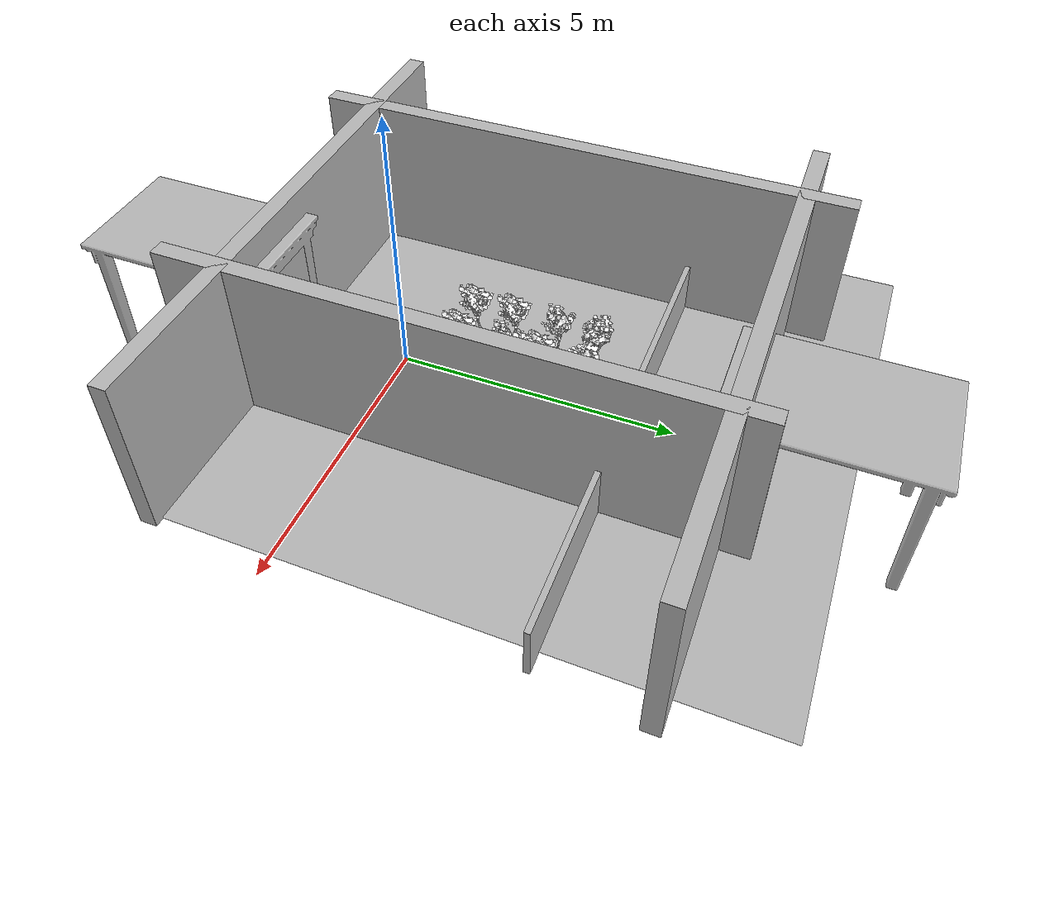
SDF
<?xml version="1.0" ?>
  <sdf version="1.7">
  <world name="default">
  <physics type="ode">
      <ode>
        <solver>
          <type>world</type>
        </solver>
        <constraints>
          <contact_max_correcting_vel>0.1</contact_max_correcting_vel>
          <contact_surface_layer>0.0001</contact_surface_layer>
        </constraints>
      </ode>
      <max_step_size>0.001</max_step_size>
      <real_time_factor>1.0</real_time_factor>
      <real_time_update_rate>1000</real_time_update_rate>
    </physics>
    <gravity>0.0 0.0 -9.81</gravity>
  <!-- A global light source -->
    <light name='sun2' type='point'>
      <cast_shadows>1</cast_shadows>
      <pose frame=''>-0.5 2 5 0 -0 0</pose>
      <diffuse>1 1 1 1</diffuse>
      <specular>0.1 0.1 0.1 1</specular>
      <attenuation>
        <range>100000</range>
        <constant>0.9</constant>
        <linear>0.01</linear>
        <quadratic>0.001</quadratic>
      </attenuation>
      <direction>0 0 1</direction>
    </light>
    <gui fullscreen='0'>
      <camera name='user_camera'>
        <pose>-0.059361 2.171367 15.466796 -0.000711 1.569796 1.571162</pose>
        <view_controller>orbit</view_controller>
        <projection_type>perspective</projection_type>
      </camera>
    </gui>

  <model name='tree_0'>
  <static>true</static>
  <link name='link'>
    <visual name='trunk'>
      <geometry>
        <mesh>
          <uri>model://meshes/Tree_4_Trunk.dae</uri>
          <scale>0.6 0.6 0.6 </scale>
        </mesh>
      </geometry>
      <material>
        <script>
          <uri>model://materials/scripts/</uri>
          <uri>model://materials/textures/</uri>
          <name>Vine/Bark</name>
        </script>
      </material>
    </visual>
    <visual name='leafa'>
      <geometry>
        <mesh>
          <uri>model://meshes/Tree_4_Leaf_1.dae</uri>
          <scale>0.6 0.6 0.6 </scale>
        </mesh>
      </geometry>
      <material>
        <script>
          <uri>model://materials/scripts/</uri>
          <uri>model://materials/textures/</uri>
          <name>Vine/Leafa</name>
        </script>
      </material>
    </visual>
    <visual name='leafb'>
      <geometry>
        <mesh>
          <uri>model://meshes/Tree_4_Leaf_2.dae</uri>
          <scale>0.6 0.6 0.6 </scale>
        </mesh>
      </geometry>
      <material>
        <script>
          <uri>model://materials/scripts/</uri>
          <uri>model://materials/textures/</uri>
          <name>Vine/Leafb</name>
        </script>
      </material>
    </visual>
    <visual name='leafc'>
      <geometry>
        <mesh>
          <uri>model://meshes/Tree_4_Leaf_3.dae</uri>
          <scale>0.6 0.6 0.6 </scale>
        </mesh>
      </geometry>
      <material>
        <script>
          <uri>model://materials/scripts/</uri>
          <uri>model://materials/textures/</uri>
          <name>Vine/Leafc</name>
        </script>
      </material>
    </visual>
    <self_collide>0</self_collide>
    <enable_wind>0</enable_wind>
    <kinematic>0</kinematic>
  </link>
  <pose>-0.41 1.0 0 0 0 0</pose>
</model>

  <model name='tree_1'>
  <static>true</static>
  <link name='link'>
    <visual name='trunk'>
      <geometry>
        <mesh>
          <uri>model://meshes/Tree_2_Trunk.dae</uri>
          <scale>0.6 0.6 0.6 </scale>
        </mesh>
      </geometry>
      <material>
        <script>
          <uri>model://materials/scripts/</uri>
          <uri>model://materials/textures/</uri>
          <name>Vine/Bark</name>
        </script>
      </material>
    </visual>
    <visual name='leafa'>
      <geometry>
        <mesh>
          <uri>model://meshes/Tree_2_Leaf_1.dae</uri>
          <scale>0.6 0.6 0.6 </scale>
        </mesh>
      </geometry>
      <material>
        <script>
          <uri>model://materials/scripts/</uri>
          <uri>model://materials/textures/</uri>
          <name>Vine/Leafa</name>
        </script>
      </material>
    </visual>
    <visual name='leafb'>
      <geometry>
        <mesh>
          <uri>model://meshes/Tree_2_Leaf_2.dae</uri>
          <scale>0.6 0.6 0.6 </scale>
        </mesh>
      </geometry>
      <material>
        <script>
          <uri>model://materials/scripts/</uri>
          <uri>model://materials/textures/</uri>
          <name>Vine/Leafb</name>
        </script>
      </material>
    </visual>
    <visual name='leafc'>
      <geometry>
        <mesh>
          <uri>model://meshes/Tree_2_Leaf_3.dae</uri>
          <scale>0.6 0.6 0.6 </scale>
        </mesh>
      </geometry>
      <material>
        <script>
          <uri>model://materials/scripts/</uri>
          <uri>model://materials/textures/</uri>
          <name>Vine/Leafc</name>
        </script>
      </material>
    </visual>
    <self_collide>0</self_collide>
    <enable_wind>0</enable_wind>
    <kinematic>0</kinematic>
  </link>
  <pose>-0.41 1.75 0 0 0 0</pose>
</model>

  <model name='tree_2'>
  <static>true</static>
  <link name='link'>
    <visual name='trunk'>
      <geometry>
        <mesh>
          <uri>model://meshes/Tree_4_Trunk.dae</uri>
          <scale>0.6 0.6 0.6 </scale>
        </mesh>
      </geometry>
      <material>
        <script>
          <uri>model://materials/scripts/</uri>
          <uri>model://materials/textures/</uri>
          <name>Vine/Bark</name>
        </script>
      </material>
    </visual>
    <visual name='leafa'>
      <geometry>
        <mesh>
          <uri>model://meshes/Tree_4_Leaf_1.dae</uri>
          <scale>0.6 0.6 0.6 </scale>
        </mesh>
      </geometry>
      <material>
        <script>
          <uri>model://materials/scripts/</uri>
          <uri>model://materials/textures/</uri>
          <name>Vine/Leafa</name>
        </script>
      </material>
    </visual>
    <visual name='leafb'>
      <geometry>
        <mesh>
          <uri>model://meshes/Tree_4_Leaf_2.dae</uri>
          <scale>0.6 0.6 0.6 </scale>
        </mesh>
      </geometry>
      <material>
        <script>
          <uri>model://materials/scripts/</uri>
          <uri>model://materials/textures/</uri>
          <name>Vine/Leafb</name>
        </script>
      </material>
    </visual>
    <visual name='leafc'>
      <geometry>
        <mesh>
          <uri>model://meshes/Tree_4_Leaf_3.dae</uri>
          <scale>0.6 0.6 0.6 </scale>
        </mesh>
      </geometry>
      <material>
        <script>
          <uri>model://materials/scripts/</uri>
          <uri>model://materials/textures/</uri>
          <name>Vine/Leafc</name>
        </script>
      </material>
    </visual>
    <self_collide>0</self_collide>
    <enable_wind>0</enable_wind>
    <kinematic>0</kinematic>
  </link>
  <pose>-0.41 2.5 0 0 0 0</pose>
</model>

  <model name='tree_3'>
  <static>true</static>
  <link name='link'>
    <visual name='trunk'>
      <geometry>
        <mesh>
          <uri>model://meshes/Tree_3_Trunk.dae</uri>
          <scale>0.6 0.6 0.6 </scale>
        </mesh>
      </geometry>
      <material>
        <script>
          <uri>model://materials/scripts/</uri>
          <uri>model://materials/textures/</uri>
          <name>Vine/Bark</name>
        </script>
      </material>
    </visual>
    <visual name='leafa'>
      <geometry>
        <mesh>
          <uri>model://meshes/Tree_3_Leaf_1.dae</uri>
          <scale>0.6 0.6 0.6 </scale>
        </mesh>
      </geometry>
      <material>
        <script>
          <uri>model://materials/scripts/</uri>
          <uri>model://materials/textures/</uri>
          <name>Vine/Leafa</name>
        </script>
      </material>
    </visual>
    <visual name='leafb'>
      <geometry>
        <mesh>
          <uri>model://meshes/Tree_3_Leaf_2.dae</uri>
          <scale>0.6 0.6 0.6 </scale>
        </mesh>
      </geometry>
      <material>
        <script>
          <uri>model://materials/scripts/</uri>
          <uri>model://materials/textures/</uri>
          <name>Vine/Leafb</name>
        </script>
      </material>
    </visual>
    <visual name='leafc'>
      <geometry>
        <mesh>
          <uri>model://meshes/Tree_3_Leaf_3.dae</uri>
          <scale>0.6 0.6 0.6 </scale>
        </mesh>
      </geometry>
      <material>
        <script>
          <uri>model://materials/scripts/</uri>
          <uri>model://materials/textures/</uri>
          <name>Vine/Leafc</name>
        </script>
      </material>
    </visual>
    <self_collide>0</self_collide>
    <enable_wind>0</enable_wind>
    <kinematic>0</kinematic>
  </link>
  <pose>-0.41 3.25 0 0 0 0</pose>
</model>

  <model name='tree_4'>
  <static>true</static>
  <link name='link'>
    <visual name='trunk'>
      <geometry>
        <mesh>
          <uri>model://meshes/Tree_1_Trunk.dae</uri>
          <scale>0.6 0.6 0.6 </scale>
        </mesh>
      </geometry>
      <material>
        <script>
          <uri>model://materials/scripts/</uri>
          <uri>model://materials/textures/</uri>
          <name>Vine/Bark</name>
        </script>
      </material>
    </visual>
    <visual name='leafa'>
      <geometry>
        <mesh>
          <uri>model://meshes/Tree_1_Leaf_1.dae</uri>
          <scale>0.6 0.6 0.6 </scale>
        </mesh>
      </geometry>
      <material>
        <script>
          <uri>model://materials/scripts/</uri>
          <uri>model://materials/textures/</uri>
          <name>Vine/Leafa</name>
        </script>
      </material>
    </visual>
    <visual name='leafb'>
      <geometry>
        <mesh>
          <uri>model://meshes/Tree_1_Leaf_2.dae</uri>
          <scale>0.6 0.6 0.6 </scale>
        </mesh>
      </geometry>
      <material>
        <script>
          <uri>model://materials/scripts/</uri>
          <uri>model://materials/textures/</uri>
          <name>Vine/Leafb</name>
        </script>
      </material>
    </visual>
    <visual name='leafc'>
      <geometry>
        <mesh>
          <uri>model://meshes/Tree_1_Leaf_3.dae</uri>
          <scale>0.6 0.6 0.6 </scale>
        </mesh>
      </geometry>
      <material>
        <script>
          <uri>model://materials/scripts/</uri>
          <uri>model://materials/textures/</uri>
          <name>Vine/Leafc</name>
        </script>
      </material>
    </visual>
    <self_collide>0</self_collide>
    <enable_wind>0</enable_wind>
    <kinematic>0</kinematic>
  </link>
  <pose>0.41 1.0 0 0 0 0</pose>
</model>

  <model name='tree_5'>
  <static>true</static>
  <link name='link'>
    <visual name='trunk'>
      <geometry>
        <mesh>
          <uri>model://meshes/Tree_2_Trunk.dae</uri>
          <scale>0.6 0.6 0.6 </scale>
        </mesh>
      </geometry>
      <material>
        <script>
          <uri>model://materials/scripts/</uri>
          <uri>model://materials/textures/</uri>
          <name>Vine/Bark</name>
        </script>
      </material>
    </visual>
    <visual name='leafa'>
      <geometry>
        <mesh>
          <uri>model://meshes/Tree_2_Leaf_1.dae</uri>
          <scale>0.6 0.6 0.6 </scale>
        </mesh>
      </geometry>
      <material>
        <script>
          <uri>model://materials/scripts/</uri>
          <uri>model://materials/textures/</uri>
          <name>Vine/Leafa</name>
        </script>
      </material>
    </visual>
    <visual name='leafb'>
      <geometry>
        <mesh>
          <uri>model://meshes/Tree_2_Leaf_2.dae</uri>
          <scale>0.6 0.6 0.6 </scale>
        </mesh>
      </geometry>
      <material>
        <script>
          <uri>model://materials/scripts/</uri>
          <uri>model://materials/textures/</uri>
          <name>Vine/Leafb</name>
        </script>
      </material>
    </visual>
    <visual name='leafc'>
      <geometry>
        <mesh>
          <uri>model://meshes/Tree_2_Leaf_3.dae</uri>
          <scale>0.6 0.6 0.6 </scale>
        </mesh>
      </geometry>
      <material>
        <script>
          <uri>model://materials/scripts/</uri>
          <uri>model://materials/textures/</uri>
          <name>Vine/Leafc</name>
        </script>
      </material>
    </visual>
    <self_collide>0</self_collide>
    <enable_wind>0</enable_wind>
    <kinematic>0</kinematic>
  </link>
  <pose>0.41 1.75 0 0 0 0</pose>
</model>

  <model name='tree_6'>
  <static>true</static>
  <link name='link'>
    <visual name='trunk'>
      <geometry>
        <mesh>
          <uri>model://meshes/Tree_1_Trunk.dae</uri>
          <scale>0.6 0.6 0.6 </scale>
        </mesh>
      </geometry>
      <material>
        <script>
          <uri>model://materials/scripts/</uri>
          <uri>model://materials/textures/</uri>
          <name>Vine/Bark</name>
        </script>
      </material>
    </visual>
    <visual name='leafa'>
      <geometry>
        <mesh>
          <uri>model://meshes/Tree_1_Leaf_1.dae</uri>
          <scale>0.6 0.6 0.6 </scale>
        </mesh>
      </geometry>
      <material>
        <script>
          <uri>model://materials/scripts/</uri>
          <uri>model://materials/textures/</uri>
          <name>Vine/Leafa</name>
        </script>
      </material>
    </visual>
    <visual name='leafb'>
      <geometry>
        <mesh>
          <uri>model://meshes/Tree_1_Leaf_2.dae</uri>
          <scale>0.6 0.6 0.6 </scale>
        </mesh>
      </geometry>
      <material>
        <script>
          <uri>model://materials/scripts/</uri>
          <uri>model://materials/textures/</uri>
          <name>Vine/Leafb</name>
        </script>
      </material>
    </visual>
    <visual name='leafc'>
      <geometry>
        <mesh>
          <uri>model://meshes/Tree_1_Leaf_3.dae</uri>
          <scale>0.6 0.6 0.6 </scale>
        </mesh>
      </geometry>
      <material>
        <script>
          <uri>model://materials/scripts/</uri>
          <uri>model://materials/textures/</uri>
          <name>Vine/Leafc</name>
        </script>
      </material>
    </visual>
    <self_collide>0</self_collide>
    <enable_wind>0</enable_wind>
    <kinematic>0</kinematic>
  </link>
  <pose>0.41 2.5 0 0 0 0</pose>
</model>

  <model name='tree_7'>
  <static>true</static>
  <link name='link'>
    <visual name='trunk'>
      <geometry>
        <mesh>
          <uri>model://meshes/Tree_3_Trunk.dae</uri>
          <scale>0.6 0.6 0.6 </scale>
        </mesh>
      </geometry>
      <material>
        <script>
          <uri>model://materials/scripts/</uri>
          <uri>model://materials/textures/</uri>
          <name>Vine/Bark</name>
        </script>
      </material>
    </visual>
    <visual name='leafa'>
      <geometry>
        <mesh>
          <uri>model://meshes/Tree_3_Leaf_1.dae</uri>
          <scale>0.6 0.6 0.6 </scale>
        </mesh>
      </geometry>
      <material>
        <script>
          <uri>model://materials/scripts/</uri>
          <uri>model://materials/textures/</uri>
          <name>Vine/Leafa</name>
        </script>
      </material>
    </visual>
    <visual name='leafb'>
      <geometry>
        <mesh>
          <uri>model://meshes/Tree_3_Leaf_2.dae</uri>
          <scale>0.6 0.6 0.6 </scale>
        </mesh>
      </geometry>
      <material>
        <script>
          <uri>model://materials/scripts/</uri>
          <uri>model://materials/textures/</uri>
          <name>Vine/Leafb</name>
        </script>
      </material>
    </visual>
    <visual name='leafc'>
      <geometry>
        <mesh>
          <uri>model://meshes/Tree_3_Leaf_3.dae</uri>
          <scale>0.6 0.6 0.6 </scale>
        </mesh>
      </geometry>
      <material>
        <script>
          <uri>model://materials/scripts/</uri>
          <uri>model://materials/textures/</uri>
          <name>Vine/Leafc</name>
        </script>
      </material>
    </visual>
    <self_collide>0</self_collide>
    <enable_wind>0</enable_wind>
    <kinematic>0</kinematic>
  </link>
  <pose>0.41 3.25 0 0 0 0</pose>
</model>

  <model name='tree_8'>
  <static>true</static>
  <link name='link'>
    <visual name='trunk'>
      <geometry>
        <mesh>
          <uri>model://meshes/Tree_4_Trunk.dae</uri>
          <scale>0.6 0.6 0.6 </scale>
        </mesh>
      </geometry>
      <material>
        <script>
          <uri>model://materials/scripts/</uri>
          <uri>model://materials/textures/</uri>
          <name>Vine/Bark</name>
        </script>
      </material>
    </visual>
    <visual name='leafa'>
      <geometry>
        <mesh>
          <uri>model://meshes/Tree_4_Leaf_1.dae</uri>
          <scale>0.6 0.6 0.6 </scale>
        </mesh>
      </geometry>
      <material>
        <script>
          <uri>model://materials/scripts/</uri>
          <uri>model://materials/textures/</uri>
          <name>Vine/Leafa</name>
        </script>
      </material>
    </visual>
    <visual name='leafb'>
      <geometry>
        <mesh>
          <uri>model://meshes/Tree_4_Leaf_2.dae</uri>
          <scale>0.6 0.6 0.6 </scale>
        </mesh>
      </geometry>
      <material>
        <script>
          <uri>model://materials/scripts/</uri>
          <uri>model://materials/textures/</uri>
          <name>Vine/Leafb</name>
        </script>
      </material>
    </visual>
    <visual name='leafc'>
      <geometry>
        <mesh>
          <uri>model://meshes/Tree_4_Leaf_3.dae</uri>
          <scale>0.6 0.6 0.6 </scale>
        </mesh>
      </geometry>
      <material>
        <script>
          <uri>model://materials/scripts/</uri>
          <uri>model://materials/textures/</uri>
          <name>Vine/Leafc</name>
        </script>
      </material>
    </visual>
    <self_collide>0</self_collide>
    <enable_wind>0</enable_wind>
    <kinematic>0</kinematic>
  </link>
  <pose>-1.16 1.0 0 0 0 0</pose>
</model>

  <model name='tree_9'>
  <static>true</static>
  <link name='link'>
    <visual name='trunk'>
      <geometry>
        <mesh>
          <uri>model://meshes/Tree_4_Trunk.dae</uri>
          <scale>0.6 0.6 0.6 </scale>
        </mesh>
      </geometry>
      <material>
        <script>
          <uri>model://materials/scripts/</uri>
          <uri>model://materials/textures/</uri>
          <name>Vine/Bark</name>
        </script>
      </material>
    </visual>
    <visual name='leafa'>
      <geometry>
        <mesh>
          <uri>model://meshes/Tree_4_Leaf_1.dae</uri>
          <scale>0.6 0.6 0.6 </scale>
        </mesh>
      </geometry>
      <material>
        <script>
          <uri>model://materials/scripts/</uri>
          <uri>model://materials/textures/</uri>
          <name>Vine/Leafa</name>
        </script>
      </material>
    </visual>
    <visual name='leafb'>
      <geometry>
        <mesh>
          <uri>model://meshes/Tree_4_Leaf_2.dae</uri>
          <scale>0.6 0.6 0.6 </scale>
        </mesh>
      </geometry>
      <material>
        <script>
          <uri>model://materials/scripts/</uri>
          <uri>model://materials/textures/</uri>
          <name>Vine/Leafb</name>
        </script>
      </material>
    </visual>
    <visual name='leafc'>
      <geometry>
        <mesh>
          <uri>model://meshes/Tree_4_Leaf_3.dae</uri>
          <scale>0.6 0.6 0.6 </scale>
        </mesh>
      </geometry>
      <material>
        <script>
          <uri>model://materials/scripts/</uri>
          <uri>model://materials/textures/</uri>
          <name>Vine/Leafc</name>
        </script>
      </material>
    </visual>
    <self_collide>0</self_collide>
    <enable_wind>0</enable_wind>
    <kinematic>0</kinematic>
  </link>
  <pose>-1.16 1.75 0 0 0 0</pose>
</model>

  <model name='tree_10'>
  <static>true</static>
  <link name='link'>
    <visual name='trunk'>
      <geometry>
        <mesh>
          <uri>model://meshes/Tree_2_Trunk.dae</uri>
          <scale>0.6 0.6 0.6 </scale>
        </mesh>
      </geometry>
      <material>
        <script>
          <uri>model://materials/scripts/</uri>
          <uri>model://materials/textures/</uri>
          <name>Vine/Bark</name>
        </script>
      </material>
    </visual>
    <visual name='leafa'>
      <geometry>
        <mesh>
          <uri>model://meshes/Tree_2_Leaf_1.dae</uri>
          <scale>0.6 0.6 0.6 </scale>
        </mesh>
      </geometry>
      <material>
        <script>
          <uri>model://materials/scripts/</uri>
          <uri>model://materials/textures/</uri>
          <name>Vine/Leafa</name>
        </script>
      </material>
    </visual>
    <visual name='leafb'>
      <geometry>
        <mesh>
          <uri>model://meshes/Tree_2_Leaf_2.dae</uri>
          <scale>0.6 0.6 0.6 </scale>
        </mesh>
      </geometry>
      <material>
        <script>
          <uri>model://materials/scripts/</uri>
          <uri>model://materials/textures/</uri>
          <name>Vine/Leafb</name>
        </script>
      </material>
    </visual>
    <visual name='leafc'>
      <geometry>
        <mesh>
          <uri>model://meshes/Tree_2_Leaf_3.dae</uri>
          <scale>0.6 0.6 0.6 </scale>
        </mesh>
      </geometry>
      <material>
        <script>
          <uri>model://materials/scripts/</uri>
          <uri>model://materials/textures/</uri>
          <name>Vine/Leafc</name>
        </script>
      </material>
    </visual>
    <self_collide>0</self_collide>
    <enable_wind>0</enable_wind>
    <kinematic>0</kinematic>
  </link>
  <pose>-1.16 2.5 0 0 0 0</pose>
</model>

  <model name='tree_11'>
  <static>true</static>
  <link name='link'>
    <visual name='trunk'>
      <geometry>
        <mesh>
          <uri>model://meshes/Tree_1_Trunk.dae</uri>
          <scale>0.6 0.6 0.6 </scale>
        </mesh>
      </geometry>
      <material>
        <script>
          <uri>model://materials/scripts/</uri>
          <uri>model://materials/textures/</uri>
          <name>Vine/Bark</name>
        </script>
      </material>
    </visual>
    <visual name='leafa'>
      <geometry>
        <mesh>
          <uri>model://meshes/Tree_1_Leaf_1.dae</uri>
          <scale>0.6 0.6 0.6 </scale>
        </mesh>
      </geometry>
      <material>
        <script>
          <uri>model://materials/scripts/</uri>
          <uri>model://materials/textures/</uri>
          <name>Vine/Leafa</name>
        </script>
      </material>
    </visual>
    <visual name='leafb'>
      <geometry>
        <mesh>
          <uri>model://meshes/Tree_1_Leaf_2.dae</uri>
          <scale>0.6 0.6 0.6 </scale>
        </mesh>
      </geometry>
      <material>
        <script>
          <uri>model://materials/scripts/</uri>
          <uri>model://materials/textures/</uri>
          <name>Vine/Leafb</name>
        </script>
      </material>
    </visual>
    <visual name='leafc'>
      <geometry>
        <mesh>
          <uri>model://meshes/Tree_1_Leaf_3.dae</uri>
          <scale>0.6 0.6 0.6 </scale>
        </mesh>
      </geometry>
      <material>
        <script>
          <uri>model://materials/scripts/</uri>
          <uri>model://materials/textures/</uri>
          <name>Vine/Leafc</name>
        </script>
      </material>
    </visual>
    <self_collide>0</self_collide>
    <enable_wind>0</enable_wind>
    <kinematic>0</kinematic>
  </link>
  <pose>-1.16 3.25 0 0 0 0</pose>
</model>

  <model name='obj_12'>
  <static>true</static>
  <link name='link'>
  <visual name='obj'>
    <cast_shadows>1</cast_shadows>
    <geometry>
      <mesh>
        <uri>model://meshes/Radiator.dae</uri>
        <scale>1 1 1 </scale>
      </mesh>
    </geometry>
    <material>
      <script>
        <uri>model://materials/scripts/</uri>
        <uri>model://materials/textures/</uri>
        <name>Obj/Radiator</name>
      </script>
    </material>
  </visual>
  <collision name='Radiator_col'>
    <pose>0 0 0 0 0 0</pose>
    <geometry>
      <mesh>
        <uri>model://meshes/Radiator.dae</uri>
        <scale>1 1 1 </scale>
      </mesh>
    </geometry>
  </collision>
  <self_collide>0</self_collide>
  <enable_wind>0</enable_wind>
  <kinematic>0</kinematic>
  </link>
  <pose>-1.16 5.87 0 0 0 0</pose>
  </model>

  <model name='obj_13'>
  <static>true</static>
  <link name='link'>
  <visual name='obj'>
    <cast_shadows>1</cast_shadows>
    <geometry>
      <mesh>
        <uri>model://meshes/Radiator.dae</uri>
        <scale>1 1 1 </scale>
      </mesh>
    </geometry>
    <material>
      <script>
        <uri>model://materials/scripts/</uri>
        <uri>model://materials/textures/</uri>
        <name>Obj/Radiator</name>
      </script>
    </material>
  </visual>
  <collision name='Radiator_col'>
    <pose>0 0 0 0 0 0</pose>
    <geometry>
      <mesh>
        <uri>model://meshes/Radiator.dae</uri>
        <scale>1 1 1 </scale>
      </mesh>
    </geometry>
  </collision>
  <self_collide>0</self_collide>
  <enable_wind>0</enable_wind>
  <kinematic>0</kinematic>
  </link>
  <pose>1.6 3.8 0 0 0 1.57079632679</pose>
  </model>

  <model name='obj_14'>
  <static>true</static>
  <link name='link'>
  <visual name='obj'>
    <cast_shadows>1</cast_shadows>
    <geometry>
      <mesh>
        <uri>model://meshes/Radiator.dae</uri>
        <scale>1 1 1 </scale>
      </mesh>
    </geometry>
    <material>
      <script>
        <uri>model://materials/scripts/</uri>
        <uri>model://materials/textures/</uri>
        <name>Obj/Radiator</name>
      </script>
    </material>
  </visual>
  <collision name='Radiator_col'>
    <pose>0 0 0 0 0 0</pose>
    <geometry>
      <mesh>
        <uri>model://meshes/Radiator.dae</uri>
        <scale>1 1 1 </scale>
      </mesh>
    </geometry>
  </collision>
  <self_collide>0</self_collide>
  <enable_wind>0</enable_wind>
  <kinematic>0</kinematic>
  </link>
  <pose>1.6 -0.3 0 0 0 1.57079632679</pose>
  </model>

  <model name='obj_15'>
  <static>true</static>
  <link name='link'>
  <visual name='obj'>
    <cast_shadows>1</cast_shadows>
    <geometry>
      <mesh>
        <uri>model://meshes/Table.dae</uri>
        <scale>0.2 0.2 0.2 </scale>
      </mesh>
    </geometry>
    <material>
      <script>
        <uri>model://materials/scripts/</uri>
        <uri>model://materials/textures/</uri>
        <name>Obj/Table</name>
      </script>
    </material>
  </visual>
  <collision name='Table_col'>
    <pose>0 0 0 0 0 0</pose>
    <geometry>
      <mesh>
        <uri>model://meshes/Table.dae</uri>
        <scale>0.2 0.2 0.2 </scale>
      </mesh>
    </geometry>
  </collision>
  <self_collide>0</self_collide>
  <enable_wind>0</enable_wind>
  <kinematic>0</kinematic>
  </link>
  <pose>0.2 -1.5 0 0 0 1.57079632679</pose>
  </model>

  <model name='obj_16'>
  <static>true</static>
  <link name='link'>
  <visual name='obj'>
    <cast_shadows>1</cast_shadows>
    <geometry>
      <mesh>
        <uri>model://meshes/Table.dae</uri>
        <scale>0.9 0.9 0.9 </scale>
      </mesh>
    </geometry>
    <material>
      <script>
        <uri>model://materials/scripts/</uri>
        <uri>model://materials/textures/</uri>
        <name>Obj/Table</name>
      </script>
    </material>
  </visual>
  <collision name='Table_col'>
    <pose>0 0 0 0 0 0</pose>
    <geometry>
      <mesh>
        <uri>model://meshes/Table.dae</uri>
        <scale>0.9 0.9 0.9 </scale>
      </mesh>
    </geometry>
  </collision>
  <self_collide>0</self_collide>
  <enable_wind>0</enable_wind>
  <kinematic>0</kinematic>
  </link>
  <pose>0.77 7.42 0 0 0 1.57079632679</pose>
  </model>

  <model name='obj_17'>
  <static>true</static>
  <link name='link'>
  <visual name='obj'>
    <cast_shadows>1</cast_shadows>
    <geometry>
      <mesh>
        <uri>model://meshes/Table.dae</uri>
        <scale>0.9 0.9 0.9 </scale>
      </mesh>
    </geometry>
    <material>
      <script>
        <uri>model://materials/scripts/</uri>
        <uri>model://materials/textures/</uri>
        <name>Obj/Table</name>
      </script>
    </material>
  </visual>
  <collision name='Table_col'>
    <pose>0 0 0 0 0 0</pose>
    <geometry>
      <mesh>
        <uri>model://meshes/Table.dae</uri>
        <scale>0.9 0.9 0.9 </scale>
      </mesh>
    </geometry>
  </collision>
  <self_collide>0</self_collide>
  <enable_wind>0</enable_wind>
  <kinematic>0</kinematic>
  </link>
  <pose>0.68 -3.36 0 0 0 1.57079632679</pose>
  </model>

  <model name='obj_18'>
  <static>true</static>
  <link name='link'>
  <visual name='obj'>
    <cast_shadows>1</cast_shadows>
    <geometry>
      <mesh>
        <uri>model://meshes/Floor.dae</uri>
        <scale>1 1 1 </scale>
      </mesh>
    </geometry>
    <material>
      <script>
        <uri>model://materials/scripts/</uri>
        <uri>model://materials/textures/</uri>
        <name>Obj/Floor</name>
      </script>
    </material>
  </visual>
  <collision name='Floor_col'>
    <pose>0 0 0 0 0 0</pose>
    <geometry>
      <mesh>
        <uri>model://meshes/Floor.dae</uri>
        <scale>1 1 1 </scale>
      </mesh>
    </geometry>
  </collision>
  <self_collide>0</self_collide>
  <enable_wind>0</enable_wind>
  <kinematic>0</kinematic>
  </link>
  <pose>-4 -8 0.03 0 0 0</pose>
  </model>

  <model name='obj_19'>
  <static>true</static>
  <link name='link'>
  <visual name='obj'>
    <cast_shadows>1</cast_shadows>
    <geometry>
      <mesh>
        <uri>model://meshes/Wall.dae</uri>
        <scale>1 1 1 </scale>
      </mesh>
    </geometry>
    <material>
      <script>
        <uri>model://materials/scripts/</uri>
        <uri>model://materials/textures/</uri>
        <name>Obj/Wall</name>
      </script>
    </material>
  </visual>
  <collision name='Wall_col'>
    <pose>0 0 0 0 0 0</pose>
    <geometry>
      <mesh>
        <uri>model://meshes/Wall.dae</uri>
        <scale>1 1 1 </scale>
      </mesh>
    </geometry>
  </collision>
  <self_collide>0</self_collide>
  <enable_wind>0</enable_wind>
  <kinematic>0</kinematic>
  </link>
  <pose>1.18 3.57 0 0 0 0</pose>
  </model>

  <model name='obj_20'>
  <static>true</static>
  <link name='link'>
  <visual name='obj'>
    <cast_shadows>1</cast_shadows>
    <geometry>
      <mesh>
        <uri>model://meshes/Wall.dae</uri>
        <scale>1 1 1 </scale>
      </mesh>
    </geometry>
    <material>
      <script>
        <uri>model://materials/scripts/</uri>
        <uri>model://materials/textures/</uri>
        <name>Obj/Wall</name>
      </script>
    </material>
  </visual>
  <collision name='Wall_col'>
    <pose>0 0 0 0 0 0</pose>
    <geometry>
      <mesh>
        <uri>model://meshes/Wall.dae</uri>
        <scale>1 1 1 </scale>
      </mesh>
    </geometry>
  </collision>
  <self_collide>0</self_collide>
  <enable_wind>0</enable_wind>
  <kinematic>0</kinematic>
  </link>
  <pose>-4.1 3.8 0 0 0 0</pose>
  </model>

  <model name='obj_21'>
  <static>true</static>
  <link name='link'>
  <visual name='obj'>
    <cast_shadows>1</cast_shadows>
    <geometry>
      <mesh>
        <uri>model://meshes/Wall.dae</uri>
        <scale>1 1 1 </scale>
      </mesh>
    </geometry>
    <material>
      <script>
        <uri>model://materials/scripts/</uri>
        <uri>model://materials/textures/</uri>
        <name>Obj/Wall</name>
      </script>
    </material>
  </visual>
  <collision name='Wall_col'>
    <pose>0 0 0 0 0 0</pose>
    <geometry>
      <mesh>
        <uri>model://meshes/Wall.dae</uri>
        <scale>1 1 1 </scale>
      </mesh>
    </geometry>
  </collision>
  <self_collide>0</self_collide>
  <enable_wind>0</enable_wind>
  <kinematic>0</kinematic>
  </link>
  <pose>-1.6 5.4 0 0 0 1.57079632679</pose>
  </model>

  <model name='obj_22'>
  <static>true</static>
  <link name='link'>
  <visual name='obj'>
    <cast_shadows>1</cast_shadows>
    <geometry>
      <mesh>
        <uri>model://meshes/Wall.dae</uri>
        <scale>1 1 1 </scale>
      </mesh>
    </geometry>
    <material>
      <script>
        <uri>model://materials/scripts/</uri>
        <uri>model://materials/textures/</uri>
        <name>Obj/Wall</name>
      </script>
    </material>
  </visual>
  <collision name='Wall_col'>
    <pose>0 0 0 0 0 0</pose>
    <geometry>
      <mesh>
        <uri>model://meshes/Wall.dae</uri>
        <scale>1 1 1 </scale>
      </mesh>
    </geometry>
  </collision>
  <self_collide>0</self_collide>
  <enable_wind>0</enable_wind>
  <kinematic>0</kinematic>
  </link>
  <pose>-2 -2.8 0 0 0 1.57079632679</pose>
  </model>

  <model name='Apriltag36_11_00000_23'>
    <link name='main'>
    <pose frame=''>0.45 0.5 0.3 0 1.57079632679 0</pose>
      <visual name='main_Visual'>
        <geometry>
          <box>
          <size>0.3 0.3 0.0001</size>
          </box>
        </geometry>
           <material>
          <script>
            <uri>model://materials/scripts/</uri>
            <uri>model://materials/textures/</uri>
            <name>Obj/Apriltag36_11_00000</name>
          </script>
        </material>
      </visual>
     </link>
    <static>1</static>
  </model>

  <model name='obj_24'>
    <link name='main'>
    <pose frame=''>0 4.3 0.5 0 0 0</pose>
      <visual name='main_Visual'>
        <geometry>
          <box>
          <size>10 0.1 1</size>
          </box>
        </geometry>
      </visual>
     </link>
    <static>1</static>
  </model>

    </world>
  </sdf>
